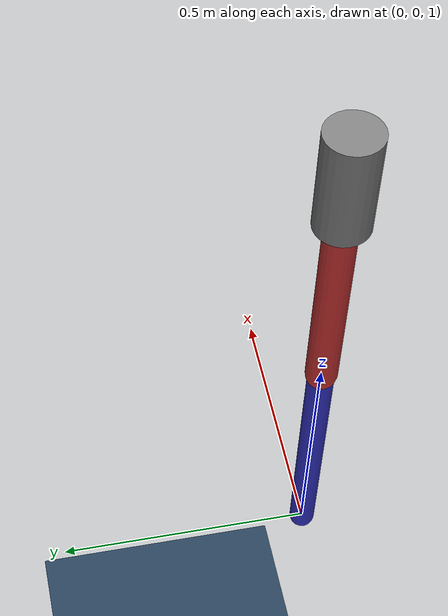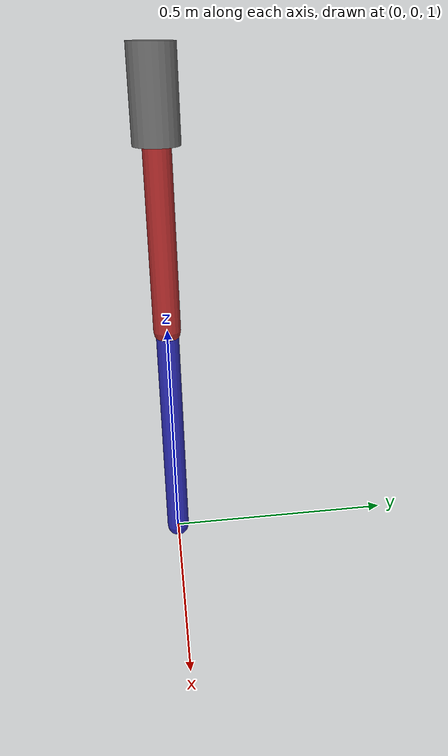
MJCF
<mujoco model="double_pendulum">
    <!-- compiler 配置：角度使用度数(degree)，使用局部坐标系(coordinate="local") -->
    <compiler coordinate="local" angle="degree"/>

    <!-- option 配置：设置重力加速度和仿真步长 -->
    <option gravity="0 0 -9.81" timestep="0.002"/>

    <asset>
        <!-- 定义纹理与材质，使仿真画面看起来更真实高级 -->
        <texture name="grid" type="2d" builtin="checker" rgb1=".2 .3 .4" rgb2=".1 .2 .3" width="512" height="512"/>
        <material name="grid_material" texture="grid" texrepeat="1 1" texuniform="true"/>
    </asset>

    <worldbody>
        <!-- 灰色网格地板，充当背景 -->
        <geom name="floor" type="plane" size="5 5 0.1" material="grid_material"/>

        <!-- 光源配置，照亮整个场景 -->
        <light diffuse=".8 .8 .8" pos="0 0 4" dir="0 0 -1"/>

        <!-- 双摆的固定底座支架，无joint定义，因此默认固定在世界坐标系中 (z = 2 米高处) -->
        <body name="stand" pos="0 0 2">
            <geom name="stand_geom" type="cylinder" size="0.05 0.1" rgba="0.5 0.5 0.5 1"/>

            <!-- 第一级摆杆 (link1)：父级为 stand。pos="0 0 0" 意为其坐标系原点与 stand 重合 -->
            <body name="link1" pos="0 0 0">
                <!-- 铰链关节：绕 Y 轴转动。axis="0 1 0" 表示旋转轴为 Y 轴 -->
                <!-- damping: 阻尼系数，用来模拟空气阻力或关节摩擦阻力 -->
                <!-- frictionloss: 库伦干摩擦力矩，用于防止小幅摆动时永不停歇 -->
                <joint name="joint1" type="hinge" pos="0 0 0" axis="0 1 0" damping="0.1" frictionloss="0.02"/>

                <!-- 摆杆胶囊体：从自身的 (0,0,0) 延伸至 (0,0,-0.5) 米，半径为 0.03 米 -->
                <!-- 通过 mass 设定质量，MuJoCo 会自动根据几何体形状计算其惯性张量 -->
                <geom name="link1_geom" type="capsule" fromto="0 0 0  0 0 -0.5" size="0.03" rgba="0.8 0.2 0.2 1" mass="1.0"/>

                <!-- 第二级摆杆 (link2)：父级为 link1。pos="0 0 -0.5" 意为其坐标原点设在第一级摆杆的底端 -->
                <body name="link2" pos="0 0 -0.5">
                    <!-- 铰链关节：同样绕 Y 轴转动，阻尼略小 -->
                    <joint name="joint2" type="hinge" pos="0 0 0" axis="0 1 0" damping="0.05" frictionloss="0.01"/>

                    <!-- 第二摆杆胶囊体：从自身的 (0,0,0) 延伸至 (0,0,-0.5) 米，半径为 0.025 米 -->
                    <geom name="link2_geom" type="capsule" fromto="0 0 0  0 0 -0.5" size="0.025" rgba="0.2 0.2 0.8 1" mass="0.8"/>
                </body>
            </body>
        </body>
    </worldbody>
</mujoco>
